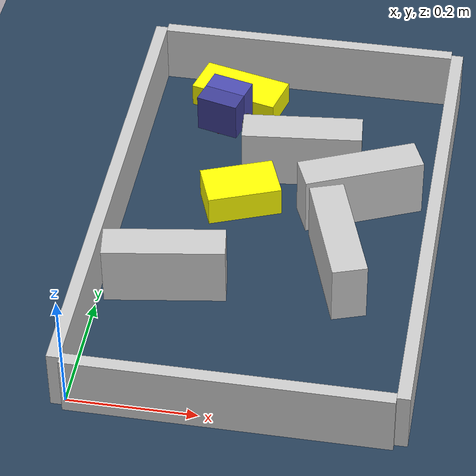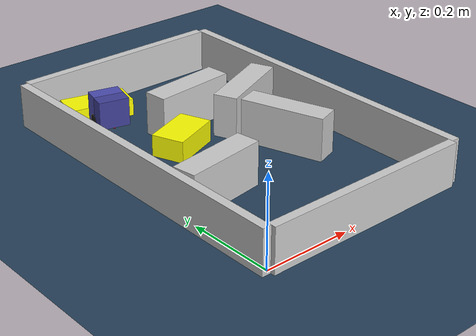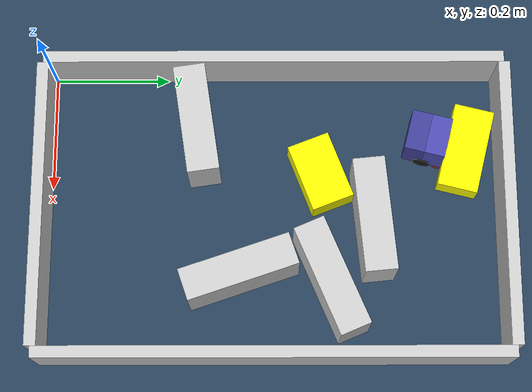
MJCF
<?xml version='1.0' encoding='utf-8'?>
<mujoco model="real_buildable">
  <compiler angle="degree" />
  <option timestep="0.002" integrator="implicitfast" iterations="100" cone="elliptic" />
  <default>
    <geom density="1" />
  </default>
  <asset>
    <texture builtin="gradient" height="3072" rgb1="0.3 0.5 0.7" rgb2="0 0 0" type="skybox" width="512" />
    <texture builtin="checker" height="300" mark="edge" markrgb="0.8 0.8 0.8" name="groundplane" rgb1="0.2 0.3 0.4" rgb2="0.1 0.2 0.3" type="2d" width="300" />
    <material name="groundplane" reflectance="0.2" texrepeat="5 5" texture="groundplane" texuniform="true" />
  </asset>
  <worldbody>
    <light dir="0 0 -1" directional="true" pos="0 0 1.5" />
    <geom name="floor" type="plane" condim="4" friction="0.5 0.005 0.001" material="groundplane" size="0 0 0.05" />
    <body name="walls">
      <geom name="wall_boundary_left" type="box" condim="4" friction="1.0 0.005 0.0001" rgba="0.8 0.8 0.8 1" pos="-0.010000 0.387500 0.050000" euler="0 0 0.000000" size="0.010000 0.397500 0.050000" />
      <geom name="wall_boundary_right" type="box" condim="4" friction="1.0 0.005 0.0001" rgba="0.8 0.8 0.8 1" pos="0.500000 0.387500 0.050000" euler="0 0 0.000000" size="0.010000 0.397500 0.050000" />
      <geom name="wall_boundary_bottom" type="box" condim="4" friction="1.0 0.005 0.0001" rgba="0.8 0.8 0.8 1" pos="0.245000 -0.010000 0.050000" euler="0 0 0.000000" size="0.245000 0.010000 0.050000" />
      <geom name="wall_boundary_top" type="box" condim="4" friction="1.0 0.005 0.0001" rgba="0.8 0.8 0.8 1" pos="0.245000 0.785000 0.050000" euler="0 0 0.000000" size="0.245000 0.010000 0.050000" />
      <geom name="wall_inner_1" type="box" condim="4" friction="1.0 0.005 0.0001" rgba="0.8 0.8 0.8 1" pos="0.100000 0.255000 0.050000" euler="0 0 8.400000" size="0.095000 0.027500 0.050000" />
      <geom name="wall_inner_2" type="box" condim="4" friction="1.0 0.005 0.0001" rgba="0.8 0.8 0.8 1" pos="0.359000 0.329000 0.050000" euler="0 0 108.700000" size="0.097500 0.027500 0.050000" />
      <geom name="wall_inner_3" type="box" condim="4" friction="1.0 0.005 0.0001" rgba="0.8 0.8 0.8 1" pos="0.269000 0.557000 0.050000" euler="0 0 5.500000" size="0.097500 0.027500 0.050000" />
      <geom name="wall_inner_4" type="box" condim="4" friction="1.0 0.005 0.0001" rgba="0.8 0.8 0.8 1" pos="0.374000 0.484000 0.050000" euler="0 0 23.200000" size="0.097500 0.027500 0.050000" />
    </body>
    <body name="car" pos="0.12320852005183368 0.65381980133182249 0.01" quat="0.78913920160835926 0 0 0.61421439293207813">
      <freejoint name="car_freejoint" />
      <inertial pos="0 0 0.0375" mass="0.35" diaginertia="0.000266 0.000266 0.000286" />
      <geom name="front_chassis_collision" type="box" pos="0.0175 0 0.0375" size="0.0175 0.035 0.0325" rgba="0.3 0.3 0.7 1" />
      <geom name="rear_chassis_collision" type="box" pos="-0.0175 0 0.0375" size="0.0175 0.035 0.0325" rgba="0.25 0.25 0.6 1" />
      <geom name="front_marker" type="box" pos="0.034 0 0.0505" size="0.002 0.015 0.01" rgba="1 0.2 0.2 1" contype="0" conaffinity="0" />
      <body name="rear_support_body" pos="-0.03 0 0.0025">
        <joint name="rear_caster_joint" type="ball" damping="0.0001" />
        <inertial pos="0 0 0" mass="0.025" diaginertia="0.000001 0.000001 0.000001" />
        <geom name="rear_support" type="sphere" pos="0 0 0" size="0.0025" friction="0 0 0" rgba="0.7 0.1 0.1 1" />
      </body>
      <body name="front_support_body" pos="0.03 0 0.0025">
        <joint name="front_caster_joint" type="ball" damping="0.0001" />
        <inertial pos="0 0 0" mass="0.025" diaginertia="0.000001 0.000001 0.000001" />
        <geom name="front_support" type="sphere" pos="0 0 0" size="0.0025" friction="0 0 0" rgba="0.1 0.7 0.1 1" />
      </body>
      <body name="left_wheel" pos="0 0.0375 0.015">
        <inertial pos="0 0 0" mass="0.05" diaginertia="0.000003 0.000006 0.000003" />
        <joint name="left_wheel_joint" type="hinge" axis="0 1 0" damping="0.01" armature="0.0001" />
        <geom name="left_wheel_collision" type="cylinder" size="0.015 0.0005" euler="90 0 0" rgba="0.1 0.1 0.1 1" />
      </body>
      <body name="right_wheel" pos="0 -0.0375 0.015">
        <inertial pos="0 0 0" mass="0.05" diaginertia="0.000003 0.000006 0.000003" />
        <joint name="right_wheel_joint" type="hinge" axis="0 1 0" damping="0.01" armature="0.0001" />
        <geom name="right_wheel_collision" type="cylinder" size="0.015 0.0005" euler="90 0 0" rgba="0.1 0.1 0.1 1" />
      </body>
    </body>
    <body name="obstacle_0_movable">
      <geom name="obstacle_0_movable" condim="4" pos="0.18162141608202312 0.46834590462904602 0.025000000000000001" friction="1 0.005 0.0001" rgba="1 1 0 1" size="0.037500 0.060000 0.025000" type="box" mass="0.1" quat="0.82496615530979522 0 0 -0.56518213223117275" />
      <joint type="free" />
    </body>
    <body name="obstacle_1_movable">
      <geom name="obstacle_1_movable" condim="4" pos="0.13740592996957621 0.72301890426326443 0.02" friction="1 0.005 0.0001" rgba="1 1 0 1" size="0.035000 0.075000 0.020000" type="box" mass="0.1" quat="0.78768963465409259 0 0 0.61607226804856441" />
      <joint type="free" />
    </body>
    <site name="goal" type="sphere" pos="0.144000 0.680000 0.0" size="0.02" rgba="1 0 0 0.5" />
  </worldbody>
  <actuator>
    <velocity name="left_wheel_drive" joint="left_wheel_joint" ctrlrange="-25 25" kv="0.75" forcerange="-0.5 0.5" />
    <velocity name="right_wheel_drive" joint="right_wheel_joint" ctrlrange="-25 25" kv="0.75" forcerange="-0.5 0.5" />
  </actuator>
</mujoco>
